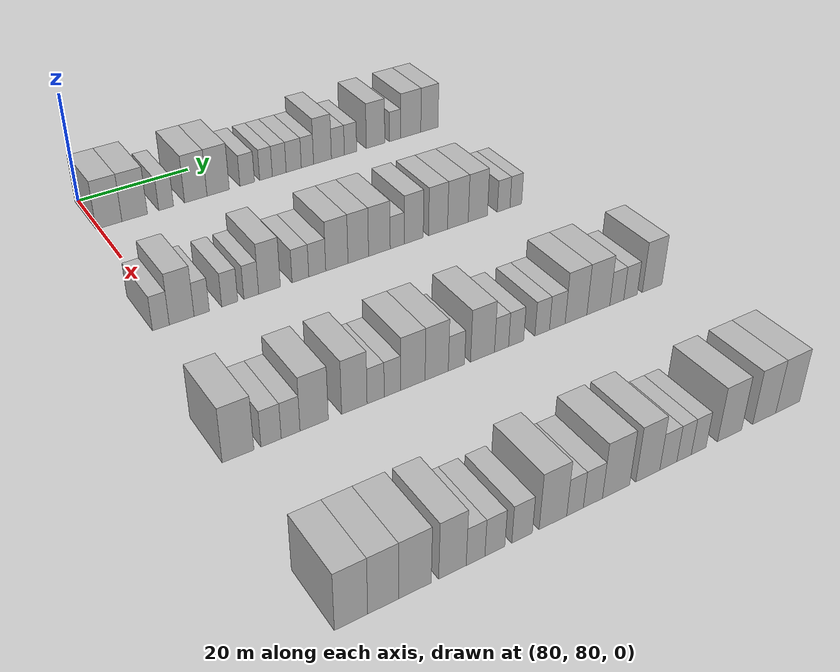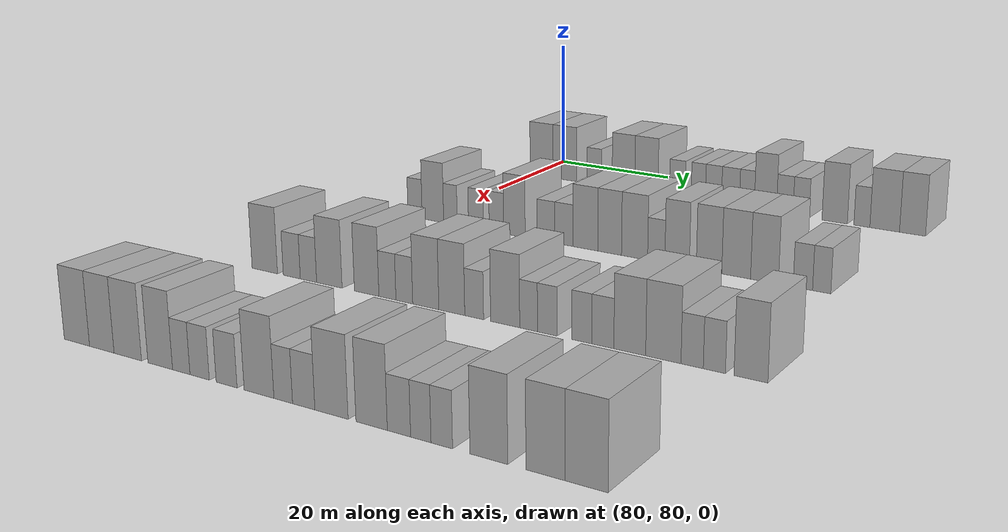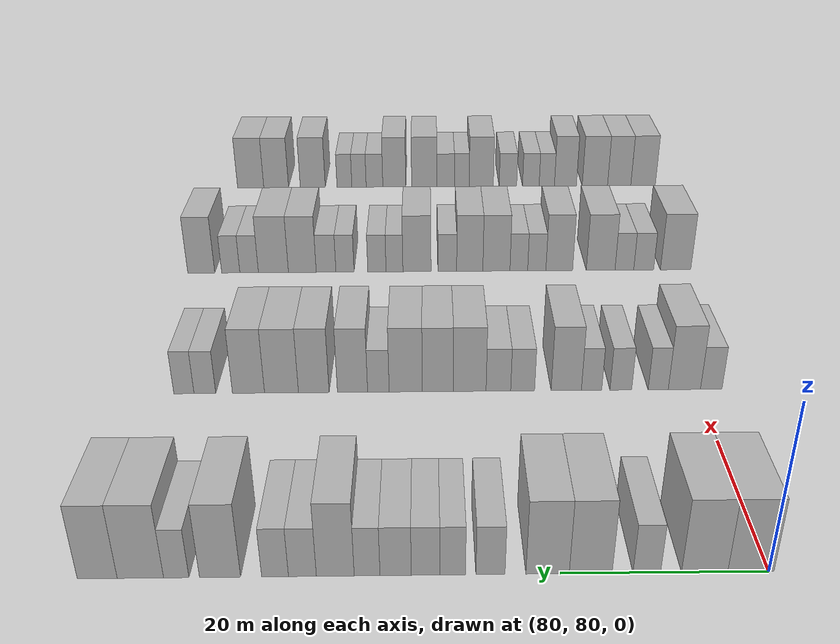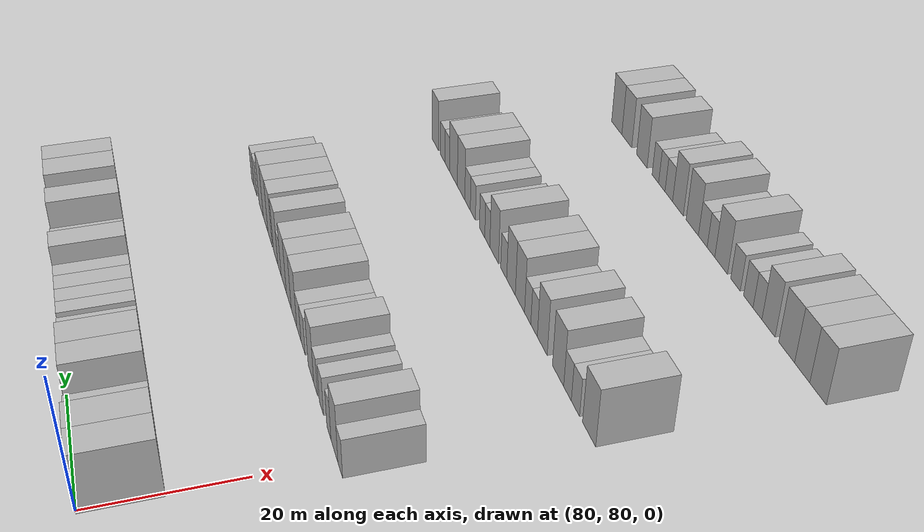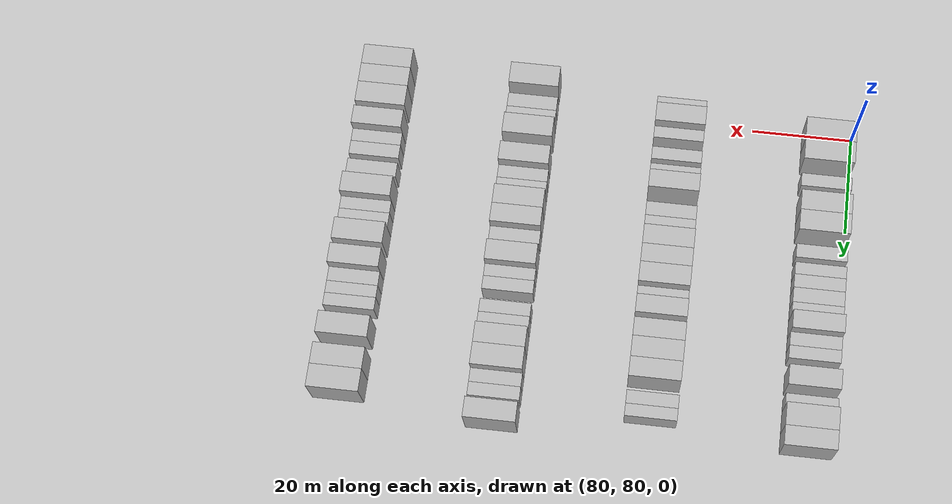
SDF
<sdf version="1.6">
 <world name="default">
  <model name="building_597">
   <static>1</static>
   <pose>85.0000 81.7345 0 0.000000 0.000000 0.000000</pose>
   <link name="link">
    <pose>0 0 4.50 0 0 0</pose>
    <collision name="collision"><geometry><box><size>10.0000 4.4524 9.0000</size></box></geometry></collision>
    <visual name="visual">
     <cast_shadows>0</cast_shadows>
     <geometry><box><size>10.0000 4.4524 9.0000</size></box></geometry>
     <material>
      <script>
       <uri>model://HANNAS_wall/materials/scripts</uri>
       <uri>model://HANNAS_wall/materials/textures</uri>
       <name>vrc/HANNAS_wall</name>
      </script>
     </material>
    </visual>
   </link>
  </model>
  <model name="building_598">
   <static>1</static>
   <pose>85.0000 86.1853 0 0.000000 0.000000 0.000000</pose>
   <link name="link">
    <pose>0 0 4.50 0 0 0</pose>
    <collision name="collision"><geometry><box><size>10.0000 4.4492 9.0000</size></box></geometry></collision>
    <visual name="visual">
     <cast_shadows>0</cast_shadows>
     <geometry><box><size>10.0000 4.4492 9.0000</size></box></geometry>
     <material>
      <script>
       <uri>model://HANNAS_wall/materials/scripts</uri>
       <uri>model://HANNAS_wall/materials/textures</uri>
       <name>vrc/HANNAS_wall</name>
      </script>
     </material>
    </visual>
   </link>
  </model>
  <model name="building_599">
   <static>1</static>
   <pose>85.0000 91.7376 0 0.000000 0.000000 0.000000</pose>
   <link name="link">
    <pose>0 0 3.00 0 0 0</pose>
    <collision name="collision"><geometry><box><size>10.0000 2.6554 6.0000</size></box></geometry></collision>
    <visual name="visual">
     <cast_shadows>0</cast_shadows>
     <geometry><box><size>10.0000 2.6554 6.0000</size></box></geometry>
     <material>
      <script>
       <uri>model://HANNAS_wall/materials/scripts</uri>
       <uri>model://HANNAS_wall/materials/textures</uri>
       <name>vrc/HANNAS_wall</name>
      </script>
     </material>
    </visual>
   </link>
  </model>
  <model name="building_600">
   <static>1</static>
   <pose>85.0000 97.1211 0 0.000000 0.000000 0.000000</pose>
   <link name="link">
    <pose>0 0 4.50 0 0 0</pose>
    <collision name="collision"><geometry><box><size>10.0000 4.1117 9.0000</size></box></geometry></collision>
    <visual name="visual">
     <cast_shadows>0</cast_shadows>
     <geometry><box><size>10.0000 4.1117 9.0000</size></box></geometry>
     <material>
      <script>
       <uri>model://HANNAS_wall/materials/scripts</uri>
       <uri>model://HANNAS_wall/materials/textures</uri>
       <name>vrc/HANNAS_wall</name>
      </script>
     </material>
    </visual>
   </link>
  </model>
  <model name="building_601">
   <static>1</static>
   <pose>85.0000 101.2517 0 0.000000 0.000000 0.000000</pose>
   <link name="link">
    <pose>0 0 4.50 0 0 0</pose>
    <collision name="collision"><geometry><box><size>10.0000 4.1495 9.0000</size></box></geometry></collision>
    <visual name="visual">
     <cast_shadows>0</cast_shadows>
     <geometry><box><size>10.0000 4.1495 9.0000</size></box></geometry>
     <material>
      <script>
       <uri>model://HANNAS_wall/materials/scripts</uri>
       <uri>model://HANNAS_wall/materials/textures</uri>
       <name>vrc/HANNAS_wall</name>
      </script>
     </material>
    </visual>
   </link>
  </model>
  <model name="building_602">
   <static>1</static>
   <pose>85.0000 106.7153 0 0.000000 0.000000 0.000000</pose>
   <link name="link">
    <pose>0 0 3.00 0 0 0</pose>
    <collision name="collision"><geometry><box><size>10.0000 2.7777 6.0000</size></box></geometry></collision>
    <visual name="visual">
     <cast_shadows>0</cast_shadows>
     <geometry><box><size>10.0000 2.7777 6.0000</size></box></geometry>
     <material>
      <script>
       <uri>model://HANNAS_wall/materials/scripts</uri>
       <uri>model://HANNAS_wall/materials/textures</uri>
       <name>vrc/HANNAS_wall</name>
      </script>
     </material>
    </visual>
   </link>
  </model>
  <model name="building_603">
   <static>1</static>
   <pose>85.0000 110.3289 0 0.000000 0.000000 0.000000</pose>
   <link name="link">
    <pose>0 0 3.00 0 0 0</pose>
    <collision name="collision"><geometry><box><size>10.0000 2.4496 6.0000</size></box></geometry></collision>
    <visual name="visual">
     <cast_shadows>0</cast_shadows>
     <geometry><box><size>10.0000 2.4496 6.0000</size></box></geometry>
     <material>
      <script>
       <uri>model://HANNAS_wall/materials/scripts</uri>
       <uri>model://HANNAS_wall/materials/textures</uri>
       <name>vrc/HANNAS_wall</name>
      </script>
     </material>
    </visual>
   </link>
  </model>
  <model name="building_604">
   <static>1</static>
   <pose>85.0000 112.9109 0 0.000000 0.000000 0.000000</pose>
   <link name="link">
    <pose>0 0 3.00 0 0 0</pose>
    <collision name="collision"><geometry><box><size>10.0000 2.7144 6.0000</size></box></geometry></collision>
    <visual name="visual">
     <cast_shadows>0</cast_shadows>
     <geometry><box><size>10.0000 2.7144 6.0000</size></box></geometry>
     <material>
      <script>
       <uri>model://HANNAS_wall/materials/scripts</uri>
       <uri>model://HANNAS_wall/materials/textures</uri>
       <name>vrc/HANNAS_wall</name>
      </script>
     </material>
    </visual>
   </link>
  </model>
  <model name="building_605">
   <static>1</static>
   <pose>85.0000 115.7628 0 0.000000 0.000000 0.000000</pose>
   <link name="link">
    <pose>0 0 3.00 0 0 0</pose>
    <collision name="collision"><geometry><box><size>10.0000 2.9894 6.0000</size></box></geometry></collision>
    <visual name="visual">
     <cast_shadows>0</cast_shadows>
     <geometry><box><size>10.0000 2.9894 6.0000</size></box></geometry>
     <material>
      <script>
       <uri>model://HANNAS_wall/materials/scripts</uri>
       <uri>model://HANNAS_wall/materials/textures</uri>
       <name>vrc/HANNAS_wall</name>
      </script>
     </material>
    </visual>
   </link>
  </model>
  <model name="building_606">
   <static>1</static>
   <pose>85.0000 118.4868 0 0.000000 0.000000 0.000000</pose>
   <link name="link">
    <pose>0 0 3.00 0 0 0</pose>
    <collision name="collision"><geometry><box><size>10.0000 2.4586 6.0000</size></box></geometry></collision>
    <visual name="visual">
     <cast_shadows>0</cast_shadows>
     <geometry><box><size>10.0000 2.4586 6.0000</size></box></geometry>
     <material>
      <script>
       <uri>model://HANNAS_wall/materials/scripts</uri>
       <uri>model://HANNAS_wall/materials/textures</uri>
       <name>vrc/HANNAS_wall</name>
      </script>
     </material>
    </visual>
   </link>
  </model>
  <model name="building_607">
   <static>1</static>
   <pose>85.0000 121.5178 0 0.000000 0.000000 0.000000</pose>
   <link name="link">
    <pose>0 0 4.50 0 0 0</pose>
    <collision name="collision"><geometry><box><size>10.0000 3.6033 9.0000</size></box></geometry></collision>
    <visual name="visual">
     <cast_shadows>0</cast_shadows>
     <geometry><box><size>10.0000 3.6033 9.0000</size></box></geometry>
     <material>
      <script>
       <uri>model://HANNAS_wall/materials/scripts</uri>
       <uri>model://HANNAS_wall/materials/textures</uri>
       <name>vrc/HANNAS_wall</name>
      </script>
     </material>
    </visual>
   </link>
  </model>
  <model name="building_608">
   <static>1</static>
   <pose>85.0000 124.6471 0 0.000000 0.000000 0.000000</pose>
   <link name="link">
    <pose>0 0 3.00 0 0 0</pose>
    <collision name="collision"><geometry><box><size>10.0000 2.6553 6.0000</size></box></geometry></collision>
    <visual name="visual">
     <cast_shadows>0</cast_shadows>
     <geometry><box><size>10.0000 2.6553 6.0000</size></box></geometry>
     <material>
      <script>
       <uri>model://HANNAS_wall/materials/scripts</uri>
       <uri>model://HANNAS_wall/materials/textures</uri>
       <name>vrc/HANNAS_wall</name>
      </script>
     </material>
    </visual>
   </link>
  </model>
  <model name="building_609">
   <static>1</static>
   <pose>85.0000 127.2496 0 0.000000 0.000000 0.000000</pose>
   <link name="link">
    <pose>0 0 3.00 0 0 0</pose>
    <collision name="collision"><geometry><box><size>10.0000 2.5498 6.0000</size></box></geometry></collision>
    <visual name="visual">
     <cast_shadows>0</cast_shadows>
     <geometry><box><size>10.0000 2.5498 6.0000</size></box></geometry>
     <material>
      <script>
       <uri>model://HANNAS_wall/materials/scripts</uri>
       <uri>model://HANNAS_wall/materials/textures</uri>
       <name>vrc/HANNAS_wall</name>
      </script>
     </material>
    </visual>
   </link>
  </model>
  <model name="building_610">
   <static>1</static>
   <pose>85.0000 132.4762 0 0.000000 0.000000 0.000000</pose>
   <link name="link">
    <pose>0 0 4.50 0 0 0</pose>
    <collision name="collision"><geometry><box><size>10.0000 3.9033 9.0000</size></box></geometry></collision>
    <visual name="visual">
     <cast_shadows>0</cast_shadows>
     <geometry><box><size>10.0000 3.9033 9.0000</size></box></geometry>
     <material>
      <script>
       <uri>model://HANNAS_wall/materials/scripts</uri>
       <uri>model://HANNAS_wall/materials/textures</uri>
       <name>vrc/HANNAS_wall</name>
      </script>
     </material>
    </visual>
   </link>
  </model>
  <model name="building_611">
   <static>1</static>
   <pose>85.0000 136.6323 0 0.000000 0.000000 0.000000</pose>
   <link name="link">
    <pose>0 0 3.00 0 0 0</pose>
    <collision name="collision"><geometry><box><size>10.0000 2.4088 6.0000</size></box></geometry></collision>
    <visual name="visual">
     <cast_shadows>0</cast_shadows>
     <geometry><box><size>10.0000 2.4088 6.0000</size></box></geometry>
     <material>
      <script>
       <uri>model://HANNAS_wall/materials/scripts</uri>
       <uri>model://HANNAS_wall/materials/textures</uri>
       <name>vrc/HANNAS_wall</name>
      </script>
     </material>
    </visual>
   </link>
  </model>
  <model name="building_612">
   <static>1</static>
   <pose>85.0000 140.0355 0 0.000000 0.000000 0.000000</pose>
   <link name="link">
    <pose>0 0 4.50 0 0 0</pose>
    <collision name="collision"><geometry><box><size>10.0000 4.3975 9.0000</size></box></geometry></collision>
    <visual name="visual">
     <cast_shadows>0</cast_shadows>
     <geometry><box><size>10.0000 4.3975 9.0000</size></box></geometry>
     <material>
      <script>
       <uri>model://HANNAS_wall/materials/scripts</uri>
       <uri>model://HANNAS_wall/materials/textures</uri>
       <name>vrc/HANNAS_wall</name>
      </script>
     </material>
    </visual>
   </link>
  </model>
  <model name="building_613">
   <static>1</static>
   <pose>85.0000 144.1254 0 0.000000 0.000000 0.000000</pose>
   <link name="link">
    <pose>0 0 4.50 0 0 0</pose>
    <collision name="collision"><geometry><box><size>10.0000 3.7822 9.0000</size></box></geometry></collision>
    <visual name="visual">
     <cast_shadows>0</cast_shadows>
     <geometry><box><size>10.0000 3.7822 9.0000</size></box></geometry>
     <material>
      <script>
       <uri>model://HANNAS_wall/materials/scripts</uri>
       <uri>model://HANNAS_wall/materials/textures</uri>
       <name>vrc/HANNAS_wall</name>
      </script>
     </material>
    </visual>
   </link>
  </model>
  <model name="building_830">
   <static>1</static>
   <pose>115.0000 78.2840 0 0.000000 0.000000 0.000000</pose>
   <link name="link">
    <pose>0 0 3.00 0 0 0</pose>
    <collision name="collision"><geometry><box><size>10.0000 2.6151 6.0000</size></box></geometry></collision>
    <visual name="visual">
     <cast_shadows>0</cast_shadows>
     <geometry><box><size>10.0000 2.6151 6.0000</size></box></geometry>
     <material>
      <script>
       <uri>model://HANNAS_wall/materials/scripts</uri>
       <uri>model://HANNAS_wall/materials/textures</uri>
       <name>vrc/HANNAS_wall</name>
      </script>
     </material>
    </visual>
   </link>
  </model>
  <model name="building_831">
   <static>1</static>
   <pose>115.0000 81.5453 0 0.000000 0.000000 0.000000</pose>
   <link name="link">
    <pose>0 0 4.50 0 0 0</pose>
    <collision name="collision"><geometry><box><size>10.0000 3.9077 9.0000</size></box></geometry></collision>
    <visual name="visual">
     <cast_shadows>0</cast_shadows>
     <geometry><box><size>10.0000 3.9077 9.0000</size></box></geometry>
     <material>
      <script>
       <uri>model://HANNAS_wall/materials/scripts</uri>
       <uri>model://HANNAS_wall/materials/textures</uri>
       <name>vrc/HANNAS_wall</name>
      </script>
     </material>
    </visual>
   </link>
  </model>
  <model name="building_832">
   <static>1</static>
   <pose>115.0000 84.7177 0 0.000000 0.000000 0.000000</pose>
   <link name="link">
    <pose>0 0 3.00 0 0 0</pose>
    <collision name="collision"><geometry><box><size>10.0000 2.4370 6.0000</size></box></geometry></collision>
    <visual name="visual">
     <cast_shadows>0</cast_shadows>
     <geometry><box><size>10.0000 2.4370 6.0000</size></box></geometry>
     <material>
      <script>
       <uri>model://HANNAS_wall/materials/scripts</uri>
       <uri>model://HANNAS_wall/materials/textures</uri>
       <name>vrc/HANNAS_wall</name>
      </script>
     </material>
    </visual>
   </link>
  </model>
  <model name="building_833">
   <static>1</static>
   <pose>115.0000 89.2496 0 0.000000 0.000000 0.000000</pose>
   <link name="link">
    <pose>0 0 3.00 0 0 0</pose>
    <collision name="collision"><geometry><box><size>10.0000 2.6267 6.0000</size></box></geometry></collision>
    <visual name="visual">
     <cast_shadows>0</cast_shadows>
     <geometry><box><size>10.0000 2.6267 6.0000</size></box></geometry>
     <material>
      <script>
       <uri>model://HANNAS_wall/materials/scripts</uri>
       <uri>model://HANNAS_wall/materials/textures</uri>
       <name>vrc/HANNAS_wall</name>
      </script>
     </material>
    </visual>
   </link>
  </model>
  <model name="building_834">
   <static>1</static>
   <pose>115.0000 92.7955 0 0.000000 0.000000 0.000000</pose>
   <link name="link">
    <pose>0 0 3.00 0 0 0</pose>
    <collision name="collision"><geometry><box><size>10.0000 2.4651 6.0000</size></box></geometry></collision>
    <visual name="visual">
     <cast_shadows>0</cast_shadows>
     <geometry><box><size>10.0000 2.4651 6.0000</size></box></geometry>
     <material>
      <script>
       <uri>model://HANNAS_wall/materials/scripts</uri>
       <uri>model://HANNAS_wall/materials/textures</uri>
       <name>vrc/HANNAS_wall</name>
      </script>
     </material>
    </visual>
   </link>
  </model>
  <model name="building_835">
   <static>1</static>
   <pose>115.0000 95.8587 0 0.000000 0.000000 0.000000</pose>
   <link name="link">
    <pose>0 0 4.50 0 0 0</pose>
    <collision name="collision"><geometry><box><size>10.0000 3.6614 9.0000</size></box></geometry></collision>
    <visual name="visual">
     <cast_shadows>0</cast_shadows>
     <geometry><box><size>10.0000 3.6614 9.0000</size></box></geometry>
     <material>
      <script>
       <uri>model://HANNAS_wall/materials/scripts</uri>
       <uri>model://HANNAS_wall/materials/textures</uri>
       <name>vrc/HANNAS_wall</name>
      </script>
     </material>
    </visual>
   </link>
  </model>
  <model name="building_836">
   <static>1</static>
   <pose>115.0000 101.1338 0 0.000000 0.000000 0.000000</pose>
   <link name="link">
    <pose>0 0 3.00 0 0 0</pose>
    <collision name="collision"><geometry><box><size>10.0000 2.8887 6.0000</size></box></geometry></collision>
    <visual name="visual">
     <cast_shadows>0</cast_shadows>
     <geometry><box><size>10.0000 2.8887 6.0000</size></box></geometry>
     <material>
      <script>
       <uri>model://HANNAS_wall/materials/scripts</uri>
       <uri>model://HANNAS_wall/materials/textures</uri>
       <name>vrc/HANNAS_wall</name>
      </script>
     </material>
    </visual>
   </link>
  </model>
  <model name="building_837">
   <static>1</static>
   <pose>115.0000 104.0645 0 0.000000 0.000000 0.000000</pose>
   <link name="link">
    <pose>0 0 3.00 0 0 0</pose>
    <collision name="collision"><geometry><box><size>10.0000 2.9727 6.0000</size></box></geometry></collision>
    <visual name="visual">
     <cast_shadows>0</cast_shadows>
     <geometry><box><size>10.0000 2.9727 6.0000</size></box></geometry>
     <material>
      <script>
       <uri>model://HANNAS_wall/materials/scripts</uri>
       <uri>model://HANNAS_wall/materials/textures</uri>
       <name>vrc/HANNAS_wall</name>
      </script>
     </material>
    </visual>
   </link>
  </model>
  <model name="building_838">
   <static>1</static>
   <pose>115.0000 107.5324 0 0.000000 0.000000 0.000000</pose>
   <link name="link">
    <pose>0 0 4.50 0 0 0</pose>
    <collision name="collision"><geometry><box><size>10.0000 3.9631 9.0000</size></box></geometry></collision>
    <visual name="visual">
     <cast_shadows>0</cast_shadows>
     <geometry><box><size>10.0000 3.9631 9.0000</size></box></geometry>
     <material>
      <script>
       <uri>model://HANNAS_wall/materials/scripts</uri>
       <uri>model://HANNAS_wall/materials/textures</uri>
       <name>vrc/HANNAS_wall</name>
      </script>
     </material>
    </visual>
   </link>
  </model>
  <model name="building_839">
   <static>1</static>
   <pose>115.0000 111.3724 0 0.000000 0.000000 0.000000</pose>
   <link name="link">
    <pose>0 0 4.50 0 0 0</pose>
    <collision name="collision"><geometry><box><size>10.0000 3.7168 9.0000</size></box></geometry></collision>
    <visual name="visual">
     <cast_shadows>0</cast_shadows>
     <geometry><box><size>10.0000 3.7168 9.0000</size></box></geometry>
     <material>
      <script>
       <uri>model://HANNAS_wall/materials/scripts</uri>
       <uri>model://HANNAS_wall/materials/textures</uri>
       <name>vrc/HANNAS_wall</name>
      </script>
     </material>
    </visual>
   </link>
  </model>
  <model name="building_840">
   <static>1</static>
   <pose>115.0000 115.2320 0 0.000000 0.000000 0.000000</pose>
   <link name="link">
    <pose>0 0 4.50 0 0 0</pose>
    <collision name="collision"><geometry><box><size>10.0000 4.0024 9.0000</size></box></geometry></collision>
    <visual name="visual">
     <cast_shadows>0</cast_shadows>
     <geometry><box><size>10.0000 4.0024 9.0000</size></box></geometry>
     <material>
      <script>
       <uri>model://HANNAS_wall/materials/scripts</uri>
       <uri>model://HANNAS_wall/materials/textures</uri>
       <name>vrc/HANNAS_wall</name>
      </script>
     </material>
    </visual>
   </link>
  </model>
  <model name="building_841">
   <static>1</static>
   <pose>115.0000 118.5324 0 0.000000 0.000000 0.000000</pose>
   <link name="link">
    <pose>0 0 3.00 0 0 0</pose>
    <collision name="collision"><geometry><box><size>10.0000 2.5986 6.0000</size></box></geometry></collision>
    <visual name="visual">
     <cast_shadows>0</cast_shadows>
     <geometry><box><size>10.0000 2.5986 6.0000</size></box></geometry>
     <material>
      <script>
       <uri>model://HANNAS_wall/materials/scripts</uri>
       <uri>model://HANNAS_wall/materials/textures</uri>
       <name>vrc/HANNAS_wall</name>
      </script>
     </material>
    </visual>
   </link>
  </model>
  <model name="building_842">
   <static>1</static>
   <pose>115.0000 121.6482 0 0.000000 0.000000 0.000000</pose>
   <link name="link">
    <pose>0 0 4.50 0 0 0</pose>
    <collision name="collision"><geometry><box><size>10.0000 3.6330 9.0000</size></box></geometry></collision>
    <visual name="visual">
     <cast_shadows>0</cast_shadows>
     <geometry><box><size>10.0000 3.6330 9.0000</size></box></geometry>
     <material>
      <script>
       <uri>model://HANNAS_wall/materials/scripts</uri>
       <uri>model://HANNAS_wall/materials/textures</uri>
       <name>vrc/HANNAS_wall</name>
      </script>
     </material>
    </visual>
   </link>
  </model>
  <model name="building_843">
   <static>1</static>
   <pose>115.0000 126.3078 0 0.000000 0.000000 0.000000</pose>
   <link name="link">
    <pose>0 0 4.50 0 0 0</pose>
    <collision name="collision"><geometry><box><size>10.0000 3.6863 9.0000</size></box></geometry></collision>
    <visual name="visual">
     <cast_shadows>0</cast_shadows>
     <geometry><box><size>10.0000 3.6863 9.0000</size></box></geometry>
     <material>
      <script>
       <uri>model://HANNAS_wall/materials/scripts</uri>
       <uri>model://HANNAS_wall/materials/textures</uri>
       <name>vrc/HANNAS_wall</name>
      </script>
     </material>
    </visual>
   </link>
  </model>
  <model name="building_844">
   <static>1</static>
   <pose>115.0000 130.1893 0 0.000000 0.000000 0.000000</pose>
   <link name="link">
    <pose>0 0 4.50 0 0 0</pose>
    <collision name="collision"><geometry><box><size>10.0000 4.0766 9.0000</size></box></geometry></collision>
    <visual name="visual">
     <cast_shadows>0</cast_shadows>
     <geometry><box><size>10.0000 4.0766 9.0000</size></box></geometry>
     <material>
      <script>
       <uri>model://HANNAS_wall/materials/scripts</uri>
       <uri>model://HANNAS_wall/materials/textures</uri>
       <name>vrc/HANNAS_wall</name>
      </script>
     </material>
    </visual>
   </link>
  </model>
  <model name="building_845">
   <static>1</static>
   <pose>115.0000 134.1545 0 0.000000 0.000000 0.000000</pose>
   <link name="link">
    <pose>0 0 4.50 0 0 0</pose>
    <collision name="collision"><geometry><box><size>10.0000 3.8540 9.0000</size></box></geometry></collision>
    <visual name="visual">
     <cast_shadows>0</cast_shadows>
     <geometry><box><size>10.0000 3.8540 9.0000</size></box></geometry>
     <material>
      <script>
       <uri>model://HANNAS_wall/materials/scripts</uri>
       <uri>model://HANNAS_wall/materials/textures</uri>
       <name>vrc/HANNAS_wall</name>
      </script>
     </material>
    </visual>
   </link>
  </model>
  <model name="building_846">
   <static>1</static>
   <pose>115.0000 139.3850 0 0.000000 0.000000 0.000000</pose>
   <link name="link">
    <pose>0 0 3.00 0 0 0</pose>
    <collision name="collision"><geometry><box><size>10.0000 2.6069 6.0000</size></box></geometry></collision>
    <visual name="visual">
     <cast_shadows>0</cast_shadows>
     <geometry><box><size>10.0000 2.6069 6.0000</size></box></geometry>
     <material>
      <script>
       <uri>model://HANNAS_wall/materials/scripts</uri>
       <uri>model://HANNAS_wall/materials/textures</uri>
       <name>vrc/HANNAS_wall</name>
      </script>
     </material>
    </visual>
   </link>
  </model>
  <model name="building_847">
   <static>1</static>
   <pose>115.0000 141.8974 0 0.000000 0.000000 0.000000</pose>
   <link name="link">
    <pose>0 0 3.00 0 0 0</pose>
    <collision name="collision"><geometry><box><size>10.0000 2.4179 6.0000</size></box></geometry></collision>
    <visual name="visual">
     <cast_shadows>0</cast_shadows>
     <geometry><box><size>10.0000 2.4179 6.0000</size></box></geometry>
     <material>
      <script>
       <uri>model://HANNAS_wall/materials/scripts</uri>
       <uri>model://HANNAS_wall/materials/textures</uri>
       <name>vrc/HANNAS_wall</name>
      </script>
     </material>
    </visual>
   </link>
  </model>
  <model name="building_1046">
   <static>1</static>
   <pose>145.0000 76.2403 0 0.000000 0.000000 0.000000</pose>
   <link name="link">
    <pose>0 0 4.50 0 0 0</pose>
    <collision name="collision"><geometry><box><size>10.0000 4.4473 9.0000</size></box></geometry></collision>
    <visual name="visual">
     <cast_shadows>0</cast_shadows>
     <geometry><box><size>10.0000 4.4473 9.0000</size></box></geometry>
     <material>
      <script>
       <uri>model://HANNAS_wall/materials/scripts</uri>
       <uri>model://HANNAS_wall/materials/textures</uri>
       <name>vrc/HANNAS_wall</name>
      </script>
     </material>
    </visual>
   </link>
  </model>
  <model name="building_1047">
   <static>1</static>
   <pose>145.0000 80.9206 0 0.000000 0.000000 0.000000</pose>
   <link name="link">
    <pose>0 0 3.00 0 0 0</pose>
    <collision name="collision"><geometry><box><size>10.0000 2.9132 6.0000</size></box></geometry></collision>
    <visual name="visual">
     <cast_shadows>0</cast_shadows>
     <geometry><box><size>10.0000 2.9132 6.0000</size></box></geometry>
     <material>
      <script>
       <uri>model://HANNAS_wall/materials/scripts</uri>
       <uri>model://HANNAS_wall/materials/textures</uri>
       <name>vrc/HANNAS_wall</name>
      </script>
     </material>
    </visual>
   </link>
  </model>
  <model name="building_1048">
   <static>1</static>
   <pose>145.0000 83.7495 0 0.000000 0.000000 0.000000</pose>
   <link name="link">
    <pose>0 0 3.00 0 0 0</pose>
    <collision name="collision"><geometry><box><size>10.0000 2.7446 6.0000</size></box></geometry></collision>
    <visual name="visual">
     <cast_shadows>0</cast_shadows>
     <geometry><box><size>10.0000 2.7446 6.0000</size></box></geometry>
     <material>
      <script>
       <uri>model://HANNAS_wall/materials/scripts</uri>
       <uri>model://HANNAS_wall/materials/textures</uri>
       <name>vrc/HANNAS_wall</name>
      </script>
     </material>
    </visual>
   </link>
  </model>
  <model name="building_1049">
   <static>1</static>
   <pose>145.0000 87.2234 0 0.000000 0.000000 0.000000</pose>
   <link name="link">
    <pose>0 0 4.50 0 0 0</pose>
    <collision name="collision"><geometry><box><size>10.0000 4.2032 9.0000</size></box></geometry></collision>
    <visual name="visual">
     <cast_shadows>0</cast_shadows>
     <geometry><box><size>10.0000 4.2032 9.0000</size></box></geometry>
     <material>
      <script>
       <uri>model://HANNAS_wall/materials/scripts</uri>
       <uri>model://HANNAS_wall/materials/textures</uri>
       <name>vrc/HANNAS_wall</name>
      </script>
     </material>
    </visual>
   </link>
  </model>
  <model name="building_1050">
   <static>1</static>
   <pose>145.0000 93.2777 0 0.000000 0.000000 0.000000</pose>
   <link name="link">
    <pose>0 0 4.50 0 0 0</pose>
    <collision name="collision"><geometry><box><size>10.0000 3.9052 9.0000</size></box></geometry></collision>
    <visual name="visual">
     <cast_shadows>0</cast_shadows>
     <geometry><box><size>10.0000 3.9052 9.0000</size></box></geometry>
     <material>
      <script>
       <uri>model://HANNAS_wall/materials/scripts</uri>
       <uri>model://HANNAS_wall/materials/textures</uri>
       <name>vrc/HANNAS_wall</name>
      </script>
     </material>
    </visual>
   </link>
  </model>
  <model name="building_1051">
   <static>1</static>
   <pose>145.0000 96.5625 0 0.000000 0.000000 0.000000</pose>
   <link name="link">
    <pose>0 0 3.00 0 0 0</pose>
    <collision name="collision"><geometry><box><size>10.0000 2.6644 6.0000</size></box></geometry></collision>
    <visual name="visual">
     <cast_shadows>0</cast_shadows>
     <geometry><box><size>10.0000 2.6644 6.0000</size></box></geometry>
     <material>
      <script>
       <uri>model://HANNAS_wall/materials/scripts</uri>
       <uri>model://HANNAS_wall/materials/textures</uri>
       <name>vrc/HANNAS_wall</name>
      </script>
     </material>
    </visual>
   </link>
  </model>
  <model name="building_1052">
   <static>1</static>
   <pose>145.0000 99.1873 0 0.000000 0.000000 0.000000</pose>
   <link name="link">
    <pose>0 0 3.00 0 0 0</pose>
    <collision name="collision"><geometry><box><size>10.0000 2.5853 6.0000</size></box></geometry></collision>
    <visual name="visual">
     <cast_shadows>0</cast_shadows>
     <geometry><box><size>10.0000 2.5853 6.0000</size></box></geometry>
     <material>
      <script>
       <uri>model://HANNAS_wall/materials/scripts</uri>
       <uri>model://HANNAS_wall/materials/textures</uri>
       <name>vrc/HANNAS_wall</name>
      </script>
     </material>
    </visual>
   </link>
  </model>
  <model name="building_1053">
   <static>1</static>
   <pose>145.0000 102.4578 0 0.000000 0.000000 0.000000</pose>
   <link name="link">
    <pose>0 0 4.50 0 0 0</pose>
    <collision name="collision"><geometry><box><size>10.0000 3.9557 9.0000</size></box></geometry></collision>
    <visual name="visual">
     <cast_shadows>0</cast_shadows>
     <geometry><box><size>10.0000 3.9557 9.0000</size></box></geometry>
     <material>
      <script>
       <uri>model://HANNAS_wall/materials/scripts</uri>
       <uri>model://HANNAS_wall/materials/textures</uri>
       <name>vrc/HANNAS_wall</name>
      </script>
     </material>
    </visual>
   </link>
  </model>
  <model name="building_1054">
   <static>1</static>
   <pose>145.0000 106.3463 0 0.000000 0.000000 0.000000</pose>
   <link name="link">
    <pose>0 0 4.50 0 0 0</pose>
    <collision name="collision"><geometry><box><size>10.0000 3.8214 9.0000</size></box></geometry></collision>
    <visual name="visual">
     <cast_shadows>0</cast_shadows>
     <geometry><box><size>10.0000 3.8214 9.0000</size></box></geometry>
     <material>
      <script>
       <uri>model://HANNAS_wall/materials/scripts</uri>
       <uri>model://HANNAS_wall/materials/textures</uri>
       <name>vrc/HANNAS_wall</name>
      </script>
     </material>
    </visual>
   </link>
  </model>
  <model name="building_1055">
   <static>1</static>
   <pose>145.0000 109.6216 0 0.000000 0.000000 0.000000</pose>
   <link name="link">
    <pose>0 0 3.00 0 0 0</pose>
    <collision name="collision"><geometry><box><size>10.0000 2.7291 6.0000</size></box></geometry></collision>
    <visual name="visual">
     <cast_shadows>0</cast_shadows>
     <geometry><box><size>10.0000 2.7291 6.0000</size></box></geometry>
     <material>
      <script>
       <uri>model://HANNAS_wall/materials/scripts</uri>
       <uri>model://HANNAS_wall/materials/textures</uri>
       <name>vrc/HANNAS_wall</name>
      </script>
     </material>
    </visual>
   </link>
  </model>
  <model name="building_1056">
   <static>1</static>
   <pose>145.0000 114.0370 0 0.000000 0.000000 0.000000</pose>
   <link name="link">
    <pose>0 0 4.50 0 0 0</pose>
    <collision name="collision"><geometry><box><size>10.0000 4.1019 9.0000</size></box></geometry></collision>
    <visual name="visual">
     <cast_shadows>0</cast_shadows>
     <geometry><box><size>10.0000 4.1019 9.0000</size></box></geometry>
     <material>
      <script>
       <uri>model://HANNAS_wall/materials/scripts</uri>
       <uri>model://HANNAS_wall/materials/textures</uri>
       <name>vrc/HANNAS_wall</name>
      </script>
     </material>
    </visual>
   </link>
  </model>
  <model name="building_1057">
   <static>1</static>
   <pose>145.0000 117.3151 0 0.000000 0.000000 0.000000</pose>
   <link name="link">
    <pose>0 0 3.00 0 0 0</pose>
    <collision name="collision"><geometry><box><size>10.0000 2.4543 6.0000</size></box></geometry></collision>
    <visual name="visual">
     <cast_shadows>0</cast_shadows>
     <geometry><box><size>10.0000 2.4543 6.0000</size></box></geometry>
     <material>
      <script>
       <uri>model://HANNAS_wall/materials/scripts</uri>
       <uri>model://HANNAS_wall/materials/textures</uri>
       <name>vrc/HANNAS_wall</name>
      </script>
     </material>
    </visual>
   </link>
  </model>
  <model name="building_1058">
   <static>1</static>
   <pose>145.0000 119.8703 0 0.000000 0.000000 0.000000</pose>
   <link name="link">
    <pose>0 0 3.00 0 0 0</pose>
    <collision name="collision"><geometry><box><size>10.0000 2.6561 6.0000</size></box></geometry></collision>
    <visual name="visual">
     <cast_shadows>0</cast_shadows>
     <geometry><box><size>10.0000 2.6561 6.0000</size></box></geometry>
     <material>
      <script>
       <uri>model://HANNAS_wall/materials/scripts</uri>
       <uri>model://HANNAS_wall/materials/textures</uri>
       <name>vrc/HANNAS_wall</name>
      </script>
     </material>
    </visual>
   </link>
  </model>
  <model name="building_1059">
   <static>1</static>
   <pose>145.0000 124.5157 0 0.000000 0.000000 0.000000</pose>
   <link name="link">
    <pose>0 0 3.00 0 0 0</pose>
    <collision name="collision"><geometry><box><size>10.0000 2.6346 6.0000</size></box></geometry></collision>
    <visual name="visual">
     <cast_shadows>0</cast_shadows>
     <geometry><box><size>10.0000 2.6346 6.0000</size></box></geometry>
     <material>
      <script>
       <uri>model://HANNAS_wall/materials/scripts</uri>
       <uri>model://HANNAS_wall/materials/textures</uri>
       <name>vrc/HANNAS_wall</name>
      </script>
     </material>
    </visual>
   </link>
  </model>
  <model name="building_1060">
   <static>1</static>
   <pose>145.0000 127.2627 0 0.000000 0.000000 0.000000</pose>
   <link name="link">
    <pose>0 0 3.00 0 0 0</pose>
    <collision name="collision"><geometry><box><size>10.0000 2.8593 6.0000</size></box></geometry></collision>
    <visual name="visual">
     <cast_shadows>0</cast_shadows>
     <geometry><box><size>10.0000 2.8593 6.0000</size></box></geometry>
     <material>
      <script>
       <uri>model://HANNAS_wall/materials/scripts</uri>
       <uri>model://HANNAS_wall/materials/textures</uri>
       <name>vrc/HANNAS_wall</name>
      </script>
     </material>
    </visual>
   </link>
  </model>
  <model name="building_1061">
   <static>1</static>
   <pose>145.0000 130.7132 0 0.000000 0.000000 0.000000</pose>
   <link name="link">
    <pose>0 0 4.50 0 0 0</pose>
    <collision name="collision"><geometry><box><size>10.0000 4.0418 9.0000</size></box></geometry></collision>
    <visual name="visual">
     <cast_shadows>0</cast_shadows>
     <geometry><box><size>10.0000 4.0418 9.0000</size></box></geometry>
     <material>
      <script>
       <uri>model://HANNAS_wall/materials/scripts</uri>
       <uri>model://HANNAS_wall/materials/textures</uri>
       <name>vrc/HANNAS_wall</name>
      </script>
     </material>
    </visual>
   </link>
  </model>
  <model name="building_1062">
   <static>1</static>
   <pose>145.0000 134.9158 0 0.000000 0.000000 0.000000</pose>
   <link name="link">
    <pose>0 0 4.50 0 0 0</pose>
    <collision name="collision"><geometry><box><size>10.0000 4.3634 9.0000</size></box></geometry></collision>
    <visual name="visual">
     <cast_shadows>0</cast_shadows>
     <geometry><box><size>10.0000 4.3634 9.0000</size></box></geometry>
     <material>
      <script>
       <uri>model://HANNAS_wall/materials/scripts</uri>
       <uri>model://HANNAS_wall/materials/textures</uri>
       <name>vrc/HANNAS_wall</name>
      </script>
     </material>
    </visual>
   </link>
  </model>
  <model name="building_1063">
   <static>1</static>
   <pose>145.0000 138.4436 0 0.000000 0.000000 0.000000</pose>
   <link name="link">
    <pose>0 0 3.00 0 0 0</pose>
    <collision name="collision"><geometry><box><size>10.0000 2.6920 6.0000</size></box></geometry></collision>
    <visual name="visual">
     <cast_shadows>0</cast_shadows>
     <geometry><box><size>10.0000 2.6920 6.0000</size></box></geometry>
     <material>
      <script>
       <uri>model://HANNAS_wall/materials/scripts</uri>
       <uri>model://HANNAS_wall/materials/textures</uri>
       <name>vrc/HANNAS_wall</name>
      </script>
     </material>
    </visual>
   </link>
  </model>
  <model name="building_1064">
   <static>1</static>
   <pose>145.0000 141.1049 0 0.000000 0.000000 0.000000</pose>
   <link name="link">
    <pose>0 0 3.00 0 0 0</pose>
    <collision name="collision"><geometry><box><size>10.0000 2.6306 6.0000</size></box></geometry></collision>
    <visual name="visual">
     <cast_shadows>0</cast_shadows>
     <geometry><box><size>10.0000 2.6306 6.0000</size></box></geometry>
     <material>
      <script>
       <uri>model://HANNAS_wall/materials/scripts</uri>
       <uri>model://HANNAS_wall/materials/textures</uri>
       <name>vrc/HANNAS_wall</name>
      </script>
     </material>
    </visual>
   </link>
  </model>
  <model name="building_1065">
   <static>1</static>
   <pose>145.0000 145.3763 0 0.000000 0.000000 0.000000</pose>
   <link name="link">
    <pose>0 0 4.50 0 0 0</pose>
    <collision name="collision"><geometry><box><size>10.0000 3.9121 9.0000</size></box></geometry></collision>
    <visual name="visual">
     <cast_shadows>0</cast_shadows>
     <geometry><box><size>10.0000 3.9121 9.0000</size></box></geometry>
     <material>
      <script>
       <uri>model://HANNAS_wall/materials/scripts</uri>
       <uri>model://HANNAS_wall/materials/textures</uri>
       <name>vrc/HANNAS_wall</name>
      </script>
     </material>
    </visual>
   </link>
  </model>
  <model name="building_1279">
   <static>1</static>
   <pose>175.0000 75.4690 0 0.000000 0.000000 0.000000</pose>
   <link name="link">
    <pose>0 0 4.50 0 0 0</pose>
    <collision name="collision"><geometry><box><size>10.0000 4.2057 9.0000</size></box></geometry></collision>
    <visual name="visual">
     <cast_shadows>0</cast_shadows>
     <geometry><box><size>10.0000 4.2057 9.0000</size></box></geometry>
     <material>
      <script>
       <uri>model://HANNAS_wall/materials/scripts</uri>
       <uri>model://HANNAS_wall/materials/textures</uri>
       <name>vrc/HANNAS_wall</name>
      </script>
     </material>
    </visual>
   </link>
  </model>
  <model name="building_1280">
   <static>1</static>
   <pose>175.0000 79.5682 0 0.000000 0.000000 0.000000</pose>
   <link name="link">
    <pose>0 0 4.50 0 0 0</pose>
    <collision name="collision"><geometry><box><size>10.0000 3.9926 9.0000</size></box></geometry></collision>
    <visual name="visual">
     <cast_shadows>0</cast_shadows>
     <geometry><box><size>10.0000 3.9926 9.0000</size></box></geometry>
     <material>
      <script>
       <uri>model://HANNAS_wall/materials/scripts</uri>
       <uri>model://HANNAS_wall/materials/textures</uri>
       <name>vrc/HANNAS_wall</name>
      </script>
     </material>
    </visual>
   </link>
  </model>
  <model name="building_1281">
   <static>1</static>
   <pose>175.0000 83.7361 0 0.000000 0.000000 0.000000</pose>
   <link name="link">
    <pose>0 0 4.50 0 0 0</pose>
    <collision name="collision"><geometry><box><size>10.0000 4.3433 9.0000</size></box></geometry></collision>
    <visual name="visual">
     <cast_shadows>0</cast_shadows>
     <geometry><box><size>10.0000 4.3433 9.0000</size></box></geometry>
     <material>
      <script>
       <uri>model://HANNAS_wall/materials/scripts</uri>
       <uri>model://HANNAS_wall/materials/textures</uri>
       <name>vrc/HANNAS_wall</name>
      </script>
     </material>
    </visual>
   </link>
  </model>
  <model name="building_1282">
   <static>1</static>
   <pose>175.0000 88.7933 0 0.000000 0.000000 0.000000</pose>
   <link name="link">
    <pose>0 0 4.50 0 0 0</pose>
    <collision name="collision"><geometry><box><size>10.0000 3.7710 9.0000</size></box></geometry></collision>
    <visual name="visual">
     <cast_shadows>0</cast_shadows>
     <geometry><box><size>10.0000 3.7710 9.0000</size></box></geometry>
     <material>
      <script>
       <uri>model://HANNAS_wall/materials/scripts</uri>
       <uri>model://HANNAS_wall/materials/textures</uri>
       <name>vrc/HANNAS_wall</name>
      </script>
     </material>
    </visual>
   </link>
  </model>
  <model name="building_1283">
   <static>1</static>
   <pose>175.0000 91.9904 0 0.000000 0.000000 0.000000</pose>
   <link name="link">
    <pose>0 0 3.00 0 0 0</pose>
    <collision name="collision"><geometry><box><size>10.0000 2.6231 6.0000</size></box></geometry></collision>
    <visual name="visual">
     <cast_shadows>0</cast_shadows>
     <geometry><box><size>10.0000 2.6231 6.0000</size></box></geometry>
     <material>
      <script>
       <uri>model://HANNAS_wall/materials/scripts</uri>
       <uri>model://HANNAS_wall/materials/textures</uri>
       <name>vrc/HANNAS_wall</name>
      </script>
     </material>
    </visual>
   </link>
  </model>
  <model name="building_1284">
   <static>1</static>
   <pose>175.0000 94.7220 0 0.000000 0.000000 0.000000</pose>
   <link name="link">
    <pose>0 0 3.00 0 0 0</pose>
    <collision name="collision"><geometry><box><size>10.0000 2.8400 6.0000</size></box></geometry></collision>
    <visual name="visual">
     <cast_shadows>0</cast_shadows>
     <geometry><box><size>10.0000 2.8400 6.0000</size></box></geometry>
     <material>
      <script>
       <uri>model://HANNAS_wall/materials/scripts</uri>
       <uri>model://HANNAS_wall/materials/textures</uri>
       <name>vrc/HANNAS_wall</name>
      </script>
     </material>
    </visual>
   </link>
  </model>
  <model name="building_1285">
   <static>1</static>
   <pose>175.0000 98.6409 0 0.000000 0.000000 0.000000</pose>
   <link name="link">
    <pose>0 0 3.00 0 0 0</pose>
    <collision name="collision"><geometry><box><size>10.0000 2.9978 6.0000</size></box></geometry></collision>
    <visual name="visual">
     <cast_shadows>0</cast_shadows>
     <geometry><box><size>10.0000 2.9978 6.0000</size></box></geometry>
     <material>
      <script>
       <uri>model://HANNAS_wall/materials/scripts</uri>
       <uri>model://HANNAS_wall/materials/textures</uri>
       <name>vrc/HANNAS_wall</name>
      </script>
     </material>
    </visual>
   </link>
  </model>
  <model name="building_1286">
   <static>1</static>
   <pose>175.0000 103.2088 0 0.000000 0.000000 0.000000</pose>
   <link name="link">
    <pose>0 0 4.50 0 0 0</pose>
    <collision name="collision"><geometry><box><size>10.0000 4.1379 9.0000</size></box></geometry></collision>
    <visual name="visual">
     <cast_shadows>0</cast_shadows>
     <geometry><box><size>10.0000 4.1379 9.0000</size></box></geometry>
     <material>
      <script>
       <uri>model://HANNAS_wall/materials/scripts</uri>
       <uri>model://HANNAS_wall/materials/textures</uri>
       <name>vrc/HANNAS_wall</name>
      </script>
     </material>
    </visual>
   </link>
  </model>
  <model name="building_1287">
   <static>1</static>
   <pose>175.0000 106.5444 0 0.000000 0.000000 0.000000</pose>
   <link name="link">
    <pose>0 0 3.00 0 0 0</pose>
    <collision name="collision"><geometry><box><size>10.0000 2.5332 6.0000</size></box></geometry></collision>
    <visual name="visual">
     <cast_shadows>0</cast_shadows>
     <geometry><box><size>10.0000 2.5332 6.0000</size></box></geometry>
     <material>
      <script>
       <uri>model://HANNAS_wall/materials/scripts</uri>
       <uri>model://HANNAS_wall/materials/textures</uri>
       <name>vrc/HANNAS_wall</name>
      </script>
     </material>
    </visual>
   </link>
  </model>
  <model name="building_1288">
   <static>1</static>
   <pose>175.0000 109.2977 0 0.000000 0.000000 0.000000</pose>
   <link name="link">
    <pose>0 0 3.00 0 0 0</pose>
    <collision name="collision"><geometry><box><size>10.0000 2.9735 6.0000</size></box></geometry></collision>
    <visual name="visual">
     <cast_shadows>0</cast_shadows>
     <geometry><box><size>10.0000 2.9735 6.0000</size></box></geometry>
     <material>
      <script>
       <uri>model://HANNAS_wall/materials/scripts</uri>
       <uri>model://HANNAS_wall/materials/textures</uri>
       <name>vrc/HANNAS_wall</name>
      </script>
     </material>
    </visual>
   </link>
  </model>
  <model name="building_1289">
   <static>1</static>
   <pose>175.0000 112.9415 0 0.000000 0.000000 0.000000</pose>
   <link name="link">
    <pose>0 0 4.50 0 0 0</pose>
    <collision name="collision"><geometry><box><size>10.0000 4.3142 9.0000</size></box></geometry></collision>
    <visual name="visual">
     <cast_shadows>0</cast_shadows>
     <geometry><box><size>10.0000 4.3142 9.0000</size></box></geometry>
     <material>
      <script>
       <uri>model://HANNAS_wall/materials/scripts</uri>
       <uri>model://HANNAS_wall/materials/textures</uri>
       <name>vrc/HANNAS_wall</name>
      </script>
     </material>
    </visual>
   </link>
  </model>
  <model name="building_1290">
   <static>1</static>
   <pose>175.0000 118.0596 0 0.000000 0.000000 0.000000</pose>
   <link name="link">
    <pose>0 0 4.50 0 0 0</pose>
    <collision name="collision"><geometry><box><size>10.0000 3.9220 9.0000</size></box></geometry></collision>
    <visual name="visual">
     <cast_shadows>0</cast_shadows>
     <geometry><box><size>10.0000 3.9220 9.0000</size></box></geometry>
     <material>
      <script>
       <uri>model://HANNAS_wall/materials/scripts</uri>
       <uri>model://HANNAS_wall/materials/textures</uri>
       <name>vrc/HANNAS_wall</name>
      </script>
     </material>
    </visual>
   </link>
  </model>
  <model name="building_1291">
   <static>1</static>
   <pose>175.0000 121.4417 0 0.000000 0.000000 0.000000</pose>
   <link name="link">
    <pose>0 0 3.00 0 0 0</pose>
    <collision name="collision"><geometry><box><size>10.0000 2.8420 6.0000</size></box></geometry></collision>
    <visual name="visual">
     <cast_shadows>0</cast_shadows>
     <geometry><box><size>10.0000 2.8420 6.0000</size></box></geometry>
     <material>
      <script>
       <uri>model://HANNAS_wall/materials/scripts</uri>
       <uri>model://HANNAS_wall/materials/textures</uri>
       <name>vrc/HANNAS_wall</name>
      </script>
     </material>
    </visual>
   </link>
  </model>
  <model name="building_1292">
   <static>1</static>
   <pose>175.0000 124.0821 0 0.000000 0.000000 0.000000</pose>
   <link name="link">
    <pose>0 0 3.00 0 0 0</pose>
    <collision name="collision"><geometry><box><size>10.0000 2.4387 6.0000</size></box></geometry></collision>
    <visual name="visual">
     <cast_shadows>0</cast_shadows>
     <geometry><box><size>10.0000 2.4387 6.0000</size></box></geometry>
     <material>
      <script>
       <uri>model://HANNAS_wall/materials/scripts</uri>
       <uri>model://HANNAS_wall/materials/textures</uri>
       <name>vrc/HANNAS_wall</name>
      </script>
     </material>
    </visual>
   </link>
  </model>
  <model name="building_1293">
   <static>1</static>
   <pose>175.0000 126.5667 0 0.000000 0.000000 0.000000</pose>
   <link name="link">
    <pose>0 0 3.00 0 0 0</pose>
    <collision name="collision"><geometry><box><size>10.0000 2.5306 6.0000</size></box></geometry></collision>
    <visual name="visual">
     <cast_shadows>0</cast_shadows>
     <geometry><box><size>10.0000 2.5306 6.0000</size></box></geometry>
     <material>
      <script>
       <uri>model://HANNAS_wall/materials/scripts</uri>
       <uri>model://HANNAS_wall/materials/textures</uri>
       <name>vrc/HANNAS_wall</name>
      </script>
     </material>
    </visual>
   </link>
  </model>
  <model name="building_1294">
   <static>1</static>
   <pose>175.0000 131.9646 0 0.000000 0.000000 0.000000</pose>
   <link name="link">
    <pose>0 0 4.50 0 0 0</pose>
    <collision name="collision"><geometry><box><size>10.0000 4.2652 9.0000</size></box></geometry></collision>
    <visual name="visual">
     <cast_shadows>0</cast_shadows>
     <geometry><box><size>10.0000 4.2652 9.0000</size></box></geometry>
     <material>
      <script>
       <uri>model://HANNAS_wall/materials/scripts</uri>
       <uri>model://HANNAS_wall/materials/textures</uri>
       <name>vrc/HANNAS_wall</name>
      </script>
     </material>
    </visual>
   </link>
  </model>
  <model name="building_1295">
   <static>1</static>
   <pose>175.0000 138.2048 0 0.000000 0.000000 0.000000</pose>
   <link name="link">
    <pose>0 0 4.50 0 0 0</pose>
    <collision name="collision"><geometry><box><size>10.0000 4.2151 9.0000</size></box></geometry></collision>
    <visual name="visual">
     <cast_shadows>0</cast_shadows>
     <geometry><box><size>10.0000 4.2151 9.0000</size></box></geometry>
     <material>
      <script>
       <uri>model://HANNAS_wall/materials/scripts</uri>
       <uri>model://HANNAS_wall/materials/textures</uri>
       <name>vrc/HANNAS_wall</name>
      </script>
     </material>
    </visual>
   </link>
  </model>
  <model name="building_1296">
   <static>1</static>
   <pose>175.0000 142.5365 0 0.000000 0.000000 0.000000</pose>
   <link name="link">
    <pose>0 0 4.50 0 0 0</pose>
    <collision name="collision"><geometry><box><size>10.0000 4.4484 9.0000</size></box></geometry></collision>
    <visual name="visual">
     <cast_shadows>0</cast_shadows>
     <geometry><box><size>10.0000 4.4484 9.0000</size></box></geometry>
     <material>
      <script>
       <uri>model://HANNAS_wall/materials/scripts</uri>
       <uri>model://HANNAS_wall/materials/textures</uri>
       <name>vrc/HANNAS_wall</name>
      </script>
     </material>
    </visual>
   </link>
  </model>
 </world>
</sdf>
